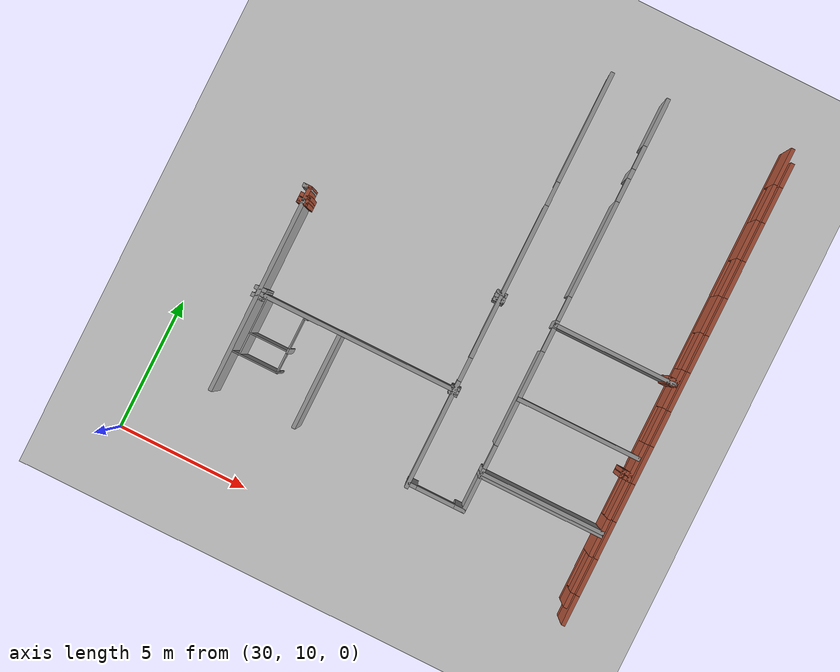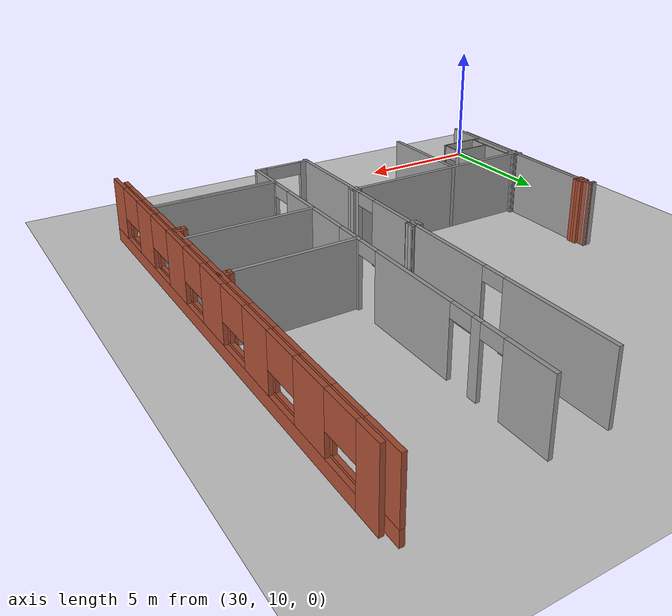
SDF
<sdf version="1.6">
 <world name="default">
  <model name="ground_plane">
   <static>1</static>
   <link name="link">
    <collision name="collision">
     <geometry><plane><normal>0 0 1</normal><size>100 100</size></plane></geometry>
     <surface><friction><ode><mu>100</mu><mu2>50</mu2></ode></friction></surface>
    </collision>
    <visual name="visual">
     <cast_shadows>0</cast_shadows>
     <geometry><plane><normal>0 0 1</normal><size>100 100</size></plane></geometry>
     <material>
      <script><uri>file://media/materials/scripts/gazebo.material</uri><name>Gazebo/Grey</name></script>
     </material>
    </visual>
   </link>
  </model>
  <model name="CVSSP">
   <pose>23.8714 24.094 0 0 -0 0</pose>
   <link name="Wall_11">
    <pose>16.2898 -3.24326 0 0 0 -1.57079</pose>
    <visual name="Wall_11_Visual_0">
     <pose>-5.93516 0 1.25 0 -0 0</pose>
     <geometry><box><size>4.26019 0.15 2.5</size></box></geometry>
     <material>
      <script><uri>file://media/materials/scripts/gazebo.material</uri><name>Gazebo/Grey</name></script>
      <ambient>0.588235 0.588235 0.588235 1</ambient>
     </material>
    </visual>
    <collision name="Wall_11_Collision_0">
     <geometry><box><size>4.26019 0.15 2.5</size></box></geometry>
     <pose>-5.93516 0 1.25 0 -0 0</pose>
    </collision>
    <visual name="Wall_11_Visual_1">
     <pose>0.054186 0 1.25 0 -0 0</pose>
     <geometry><box><size>5.9185 0.15 2.5</size></box></geometry>
     <material>
      <script><uri>file://media/materials/scripts/gazebo.material</uri><name>Gazebo/Grey</name></script>
      <ambient>0.588235 0.588235 0.588235 1</ambient>
     </material>
    </visual>
    <collision name="Wall_11_Collision_1">
     <geometry><box><size>5.9185 0.15 2.5</size></box></geometry>
     <pose>0.054186 0 1.25 0 -0 0</pose>
    </collision>
    <visual name="Wall_11_Visual_2">
     <pose>5.98935 0 1.25 0 -0 0</pose>
     <geometry><box><size>4.15182 0.15 2.5</size></box></geometry>
     <material>
      <script><uri>file://media/materials/scripts/gazebo.material</uri><name>Gazebo/Grey</name></script>
      <ambient>0.588235 0.588235 0.588235 1</ambient>
     </material>
    </visual>
    <collision name="Wall_11_Collision_2">
     <geometry><box><size>4.15182 0.15 2.5</size></box></geometry>
     <pose>5.98935 0 1.25 0 -0 0</pose>
    </collision>
    <visual name="Wall_11_Visual_3">
     <pose>-3.35506 0 2.25 0 -0 0</pose>
     <geometry><box><size>0.9 0.15 0.5</size></box></geometry>
     <material>
      <script><uri>file://media/materials/scripts/gazebo.material</uri><name>Gazebo/Grey</name></script>
      <ambient>0.588235 0.588235 0.588235 1</ambient>
     </material>
    </visual>
    <collision name="Wall_11_Collision_3">
     <geometry><box><size>0.9 0.15 0.5</size></box></geometry>
     <pose>-3.35506 0 2.25 0 -0 0</pose>
    </collision>
    <visual name="Wall_11_Visual_4">
     <pose>3.46344 0 2.25 0 -0 0</pose>
     <geometry><box><size>0.9 0.15 0.5</size></box></geometry>
     <material>
      <script><uri>file://media/materials/scripts/gazebo.material</uri><name>Gazebo/Grey</name></script>
      <ambient>0.588235 0.588235 0.588235 1</ambient>
     </material>
    </visual>
    <collision name="Wall_11_Collision_4">
     <geometry><box><size>0.9 0.15 0.5</size></box></geometry>
     <pose>3.46344 0 2.25 0 -0 0</pose>
    </collision>
   </link>
   <link name="Wall_116">
    <collision name="Wall_116_Collision">
     <geometry><box><size>7.43734 0.15 2.5</size></box></geometry>
     <pose>0 0 1.25 0 -0 0</pose>
    </collision>
    <visual name="Wall_116_Visual">
     <pose>0 0 1.25 0 -0 0</pose>
     <geometry><box><size>7.43734 0.15 2.5</size></box></geometry>
     <material>
      <script><uri>file://media/materials/scripts/gazebo.material</uri><name>Gazebo/Grey</name></script>
      <ambient>1 1 1 1</ambient>
     </material>
    </visual>
    <pose>8.67152 -7.59872 0 0 -0 1.57447</pose>
   </link>
   <link name="Wall_118">
    <collision name="Wall_118_Collision">
     <geometry><box><size>0.6489 0.15 2.5</size></box></geometry>
     <pose>0 0 1.25 0 -0 0</pose>
    </collision>
    <visual name="Wall_118_Visual">
     <pose>0 0 1.25 0 -0 0</pose>
     <geometry><box><size>0.6489 0.15 2.5</size></box></geometry>
     <material>
      <script><uri>file://media/materials/scripts/gazebo.material</uri><name>Gazebo/Bricks</name></script>
      <ambient>1 1 1 1</ambient>
     </material>
    </visual>
    <pose>8.65546 -3.70564 0 0 0 -1.56013</pose>
   </link>
   <link name="Wall_119">
    <collision name="Wall_119_Collision">
     <geometry><box><size>0.297808 0.15 2.5</size></box></geometry>
     <pose>0 0 1.25 0 -0 0</pose>
    </collision>
    <visual name="Wall_119_Visual">
     <pose>0 0 1.25 0 -0 0</pose>
     <geometry><box><size>0.297808 0.15 2.5</size></box></geometry>
     <material>
      <script><uri>file://media/materials/scripts/gazebo.material</uri><name>Gazebo/Bricks</name></script>
      <ambient>1 1 1 1</ambient>
     </material>
    </visual>
    <pose>8.58427 -3.95789 0 0 0 -3.10353</pose>
   </link>
   <link name="Wall_121">
    <collision name="Wall_121_Collision">
     <geometry><box><size>0.41465 0.15 2.5</size></box></geometry>
     <pose>0 0 1.25 0 -0 0</pose>
    </collision>
    <visual name="Wall_121_Visual">
     <pose>0 0 1.25 0 -0 0</pose>
     <geometry><box><size>0.41465 0.15 2.5</size></box></geometry>
     <material>
      <script><uri>file://media/materials/scripts/gazebo.material</uri><name>Gazebo/Bricks</name></script>
      <ambient>1 1 1 1</ambient>
     </material>
    </visual>
    <pose>8.64275 -3.77922 0 0 -0 0</pose>
   </link>
   <link name="Wall_122">
    <collision name="Wall_122_Collision">
     <geometry><box><size>0.399527 0.15 2.5</size></box></geometry>
     <pose>0 0 1.25 0 -0 0</pose>
    </collision>
    <visual name="Wall_122_Visual">
     <pose>0 0 1.25 0 -0 0</pose>
     <geometry><box><size>0.399527 0.15 2.5</size></box></geometry>
     <material>
      <script><uri>file://media/materials/scripts/gazebo.material</uri><name>Gazebo/Bricks</name></script>
      <ambient>1 1 1 1</ambient>
     </material>
    </visual>
    <pose>8.77507 -3.90399 0 0 0 -1.5708</pose>
   </link>
   <link name="Wall_123">
    <collision name="Wall_123_Collision">
     <geometry><box><size>0.415082 0.15 2.5</size></box></geometry>
     <pose>0 0 1.25 0 -0 0</pose>
    </collision>
    <visual name="Wall_123_Visual">
     <pose>0 0 1.25 0 -0 0</pose>
     <geometry><box><size>0.415082 0.15 2.5</size></box></geometry>
     <material>
      <script><uri>file://media/materials/scripts/gazebo.material</uri><name>Gazebo/Bricks</name></script>
      <ambient>1 1 1 1</ambient>
     </material>
    </visual>
    <pose>8.64275 -4.02875 0 0 -0 3.14159</pose>
   </link>
   <link name="Wall_127">
    <collision name="Wall_127_Collision">
     <geometry><box><size>7.75 0.15 2.5</size></box></geometry>
     <pose>0 0 1.25 0 -0 0</pose>
    </collision>
    <visual name="Wall_127_Visual">
     <pose>0 0 1.25 0 -0 0</pose>
     <geometry><box><size>7.75 0.15 2.5</size></box></geometry>
     <material>
      <script><uri>file://media/materials/scripts/gazebo.material</uri><name>Gazebo/Grey</name></script>
      <ambient>0.588235 0.588235 0.588235 1</ambient>
     </material>
    </visual>
    <pose>12.4552 -7.51532 0 0 -0 0</pose>
   </link>
   <link name="Wall_129">
    <collision name="Wall_129_Collision">
     <geometry><box><size>3.75 0.15 2.5</size></box></geometry>
     <pose>0 0 1.25 0 -0 0</pose>
    </collision>
    <visual name="Wall_129_Visual">
     <pose>0 0 1.25 0 -0 0</pose>
     <geometry><box><size>3.75 0.15 2.5</size></box></geometry>
     <material>
      <script><uri>file://media/materials/scripts/gazebo.material</uri><name>Gazebo/Grey</name></script>
      <ambient>1 1 1 1</ambient>
     </material>
    </visual>
    <pose>11.8522 -9.31531 0 0 0 -1.5708</pose>
   </link>
   <link name="Wall_133">
    <collision name="Wall_133_Collision">
     <geometry><box><size>4.75 0.15 2.5</size></box></geometry>
     <pose>0 0 1.25 0 -0 0</pose>
    </collision>
    <visual name="Wall_133_Visual">
     <pose>0 0 1.25 0 -0 0</pose>
     <geometry><box><size>4.75 0.15 2.5</size></box></geometry>
     <material>
      <script><uri>file://media/materials/scripts/gazebo.material</uri><name>Gazebo/Grey</name></script>
      <ambient>1 1 1 1</ambient>
     </material>
    </visual>
    <pose>20.7823 -9.67291 0 0 -0 0</pose>
   </link>
   <link name="Wall_134">
    <pose>23.0834 -2.24791 0 0 -0 1.57065</pose>
    <visual name="Wall_134_Visual_0">
     <pose>-7.19251 0 1.25 0 -0 0</pose>
     <geometry><box><size>0.601822 0.15 2.5</size></box></geometry>
     <material>
      <script><uri>file://media/materials/scripts/gazebo.material</uri><name>Gazebo/Bricks</name></script>
      <ambient>1 1 1 1</ambient>
     </material>
    </visual>
    <collision name="Wall_134_Collision_0">
     <geometry><box><size>0.601822 0.15 2.5</size></box></geometry>
     <pose>-7.19251 0 1.25 0 -0 0</pose>
    </collision>
    <visual name="Wall_134_Visual_1">
     <pose>0.300911 0 0.25 0 -0 0</pose>
     <geometry><box><size>14.385 0.15 0.5</size></box></geometry>
     <material>
      <script><uri>file://media/materials/scripts/gazebo.material</uri><name>Gazebo/Bricks</name></script>
      <ambient>1 1 1 1</ambient>
     </material>
    </visual>
    <collision name="Wall_134_Collision_1">
     <geometry><box><size>14.385 0.15 0.5</size></box></geometry>
     <pose>0.300911 0 0.25 0 -0 0</pose>
    </collision>
    <visual name="Wall_134_Visual_2">
     <pose>-4.69343 0 1.5 0 -0 0</pose>
     <geometry><box><size>1.46267 0.15 2</size></box></geometry>
     <material>
      <script><uri>file://media/materials/scripts/gazebo.material</uri><name>Gazebo/Bricks</name></script>
      <ambient>1 1 1 1</ambient>
     </material>
    </visual>
    <collision name="Wall_134_Collision_2">
     <geometry><box><size>1.46267 0.15 2</size></box></geometry>
     <pose>-4.69343 0 1.5 0 -0 0</pose>
    </collision>
    <visual name="Wall_134_Visual_3">
     <pose>-1.84084 0 1.5 0 -0 0</pose>
     <geometry><box><size>1.4912 0.15 2</size></box></geometry>
     <material>
      <script><uri>file://media/materials/scripts/gazebo.material</uri><name>Gazebo/Bricks</name></script>
      <ambient>1 1 1 1</ambient>
     </material>
    </visual>
    <collision name="Wall_134_Collision_3">
     <geometry><box><size>1.4912 0.15 2</size></box></geometry>
     <pose>-1.84084 0 1.5 0 -0 0</pose>
    </collision>
    <visual name="Wall_134_Visual_4">
     <pose>1.05448 0 1.5 0 -0 0</pose>
     <geometry><box><size>1.43416 0.15 2</size></box></geometry>
     <material>
      <script><uri>file://media/materials/scripts/gazebo.material</uri><name>Gazebo/Bricks</name></script>
      <ambient>1 1 1 1</ambient>
     </material>
    </visual>
    <collision name="Wall_134_Collision_4">
     <geometry><box><size>1.43416 0.15 2</size></box></geometry>
     <pose>1.05448 0 1.5 0 -0 0</pose>
    </collision>
    <visual name="Wall_134_Visual_5">
     <pose>3.9612 0 1.5 0 -0 0</pose>
     <geometry><box><size>1.50259 0.15 2</size></box></geometry>
     <material>
      <script><uri>file://media/materials/scripts/gazebo.material</uri><name>Gazebo/Bricks</name></script>
      <ambient>1 1 1 1</ambient>
     </material>
    </visual>
    <collision name="Wall_134_Collision_5">
     <geometry><box><size>1.50259 0.15 2</size></box></geometry>
     <pose>3.9612 0 1.5 0 -0 0</pose>
    </collision>
    <visual name="Wall_134_Visual_6">
     <pose>6.79134 0 1.5 0 -0 0</pose>
     <geometry><box><size>1.40418 0.15 2</size></box></geometry>
     <material>
      <script><uri>file://media/materials/scripts/gazebo.material</uri><name>Gazebo/Bricks</name></script>
      <ambient>1 1 1 1</ambient>
     </material>
    </visual>
    <collision name="Wall_134_Collision_6">
     <geometry><box><size>1.40418 0.15 2</size></box></geometry>
     <pose>6.79134 0 1.5 0 -0 0</pose>
    </collision>
    <visual name="Wall_134_Visual_7">
     <pose>-6.15818 0 1.9 0 -0 0</pose>
     <geometry><box><size>1.46684 0.15 1.2</size></box></geometry>
     <material>
      <script><uri>file://media/materials/scripts/gazebo.material</uri><name>Gazebo/Bricks</name></script>
      <ambient>1 1 1 1</ambient>
     </material>
    </visual>
    <collision name="Wall_134_Collision_7">
     <geometry><box><size>1.46684 0.15 1.2</size></box></geometry>
     <pose>-6.15818 0 1.9 0 -0 0</pose>
    </collision>
    <visual name="Wall_134_Visual_8">
     <pose>-3.27427 0 1.9 0 -0 0</pose>
     <geometry><box><size>1.37565 0.15 1.2</size></box></geometry>
     <material>
      <script><uri>file://media/materials/scripts/gazebo.material</uri><name>Gazebo/Bricks</name></script>
      <ambient>1 1 1 1</ambient>
     </material>
    </visual>
    <collision name="Wall_134_Collision_8">
     <geometry><box><size>1.37565 0.15 1.2</size></box></geometry>
     <pose>-3.27427 0 1.9 0 -0 0</pose>
    </collision>
    <visual name="Wall_134_Visual_9">
     <pose>-0.378919 0 1.9 0 -0 0</pose>
     <geometry><box><size>1.43264 0.15 1.2</size></box></geometry>
     <material>
      <script><uri>file://media/materials/scripts/gazebo.material</uri><name>Gazebo/Bricks</name></script>
      <ambient>1 1 1 1</ambient>
     </material>
    </visual>
    <collision name="Wall_134_Collision_9">
     <geometry><box><size>1.43264 0.15 1.2</size></box></geometry>
     <pose>-0.378919 0 1.9 0 -0 0</pose>
    </collision>
    <visual name="Wall_134_Visual_10">
     <pose>2.49073 0 1.9 0 -0 0</pose>
     <geometry><box><size>1.43834 0.15 1.2</size></box></geometry>
     <material>
      <script><uri>file://media/materials/scripts/gazebo.material</uri><name>Gazebo/Bricks</name></script>
      <ambient>1 1 1 1</ambient>
     </material>
    </visual>
    <collision name="Wall_134_Collision_10">
     <geometry><box><size>1.43834 0.15 1.2</size></box></geometry>
     <pose>2.49073 0 1.9 0 -0 0</pose>
    </collision>
    <visual name="Wall_134_Visual_11">
     <pose>5.40087 0 1.9 0 -0 0</pose>
     <geometry><box><size>1.37675 0.15 1.2</size></box></geometry>
     <material>
      <script><uri>file://media/materials/scripts/gazebo.material</uri><name>Gazebo/Bricks</name></script>
      <ambient>1 1 1 1</ambient>
     </material>
    </visual>
    <collision name="Wall_134_Collision_11">
     <geometry><box><size>1.37675 0.15 1.2</size></box></geometry>
     <pose>5.40087 0 1.9 0 -0 0</pose>
    </collision>
   </link>
   <link name="Wall_148">
    <pose>23.2939 -4.18787 0 0 0 -1.5707</pose>
    <visual name="Wall_148_Visual_0">
     <pose>-8.49404 0 1.25 0 -0 0</pose>
     <geometry><box><size>0.935478 0.15 2.5</size></box></geometry>
     <material>
      <script><uri>file://media/materials/scripts/gazebo.material</uri><name>Gazebo/Bricks</name></script>
      <ambient>1 1 1 1</ambient>
     </material>
    </visual>
    <collision name="Wall_148_Collision_0">
     <geometry><box><size>0.935478 0.15 2.5</size></box></geometry>
     <pose>-8.49404 0 1.25 0 -0 0</pose>
    </collision>
    <visual name="Wall_148_Visual_1">
     <pose>0.467739 0 0.25 0 -0 0</pose>
     <geometry><box><size>16.9881 0.15 0.5</size></box></geometry>
     <material>
      <script><uri>file://media/materials/scripts/gazebo.material</uri><name>Gazebo/Bricks</name></script>
      <ambient>1 1 1 1</ambient>
     </material>
    </visual>
    <collision name="Wall_148_Collision_1">
     <geometry><box><size>16.9881 0.15 0.5</size></box></geometry>
     <pose>0.467739 0 0.25 0 -0 0</pose>
    </collision>
    <visual name="Wall_148_Visual_2">
     <pose>-5.90972 0 1.5 0 -0 0</pose>
     <geometry><box><size>1.49689 0.15 2</size></box></geometry>
     <material>
      <script><uri>file://media/materials/scripts/gazebo.material</uri><name>Gazebo/Bricks</name></script>
      <ambient>1 1 1 1</ambient>
     </material>
    </visual>
    <collision name="Wall_148_Collision_2">
     <geometry><box><size>1.49689 0.15 2</size></box></geometry>
     <pose>-5.90972 0 1.5 0 -0 0</pose>
    </collision>
    <visual name="Wall_148_Visual_3">
     <pose>-3.00584 0 1.5 0 -0 0</pose>
     <geometry><box><size>1.45698 0.15 2</size></box></geometry>
     <material>
      <script><uri>file://media/materials/scripts/gazebo.material</uri><name>Gazebo/Bricks</name></script>
      <ambient>1 1 1 1</ambient>
     </material>
    </visual>
    <collision name="Wall_148_Collision_3">
     <geometry><box><size>1.45698 0.15 2</size></box></geometry>
     <pose>-3.00584 0 1.5 0 -0 0</pose>
    </collision>
    <visual name="Wall_148_Visual_4">
     <pose>-0.101966 0 1.5 0 -0 0</pose>
     <geometry><box><size>1.50828 0.15 2</size></box></geometry>
     <material>
      <script><uri>file://media/materials/scripts/gazebo.material</uri><name>Gazebo/Bricks</name></script>
      <ambient>1 1 1 1</ambient>
     </material>
    </visual>
    <collision name="Wall_148_Collision_4">
     <geometry><box><size>1.50828 0.15 2</size></box></geometry>
     <pose>-0.101966 0 1.5 0 -0 0</pose>
    </collision>
    <visual name="Wall_148_Visual_5">
     <pose>2.74776 0 1.5 0 -0 0</pose>
     <geometry><box><size>1.46268 0.15 2</size></box></geometry>
     <material>
      <script><uri>file://media/materials/scripts/gazebo.material</uri><name>Gazebo/Bricks</name></script>
      <ambient>1 1 1 1</ambient>
     </material>
    </visual>
    <collision name="Wall_148_Collision_5">
     <geometry><box><size>1.46268 0.15 2</size></box></geometry>
     <pose>2.74776 0 1.5 0 -0 0</pose>
    </collision>
    <visual name="Wall_148_Visual_6">
     <pose>5.65733 0 1.5 0 -0 0</pose>
     <geometry><box><size>1.44558 0.15 2</size></box></geometry>
     <material>
      <script><uri>file://media/materials/scripts/gazebo.material</uri><name>Gazebo/Bricks</name></script>
      <ambient>1 1 1 1</ambient>
     </material>
    </visual>
    <collision name="Wall_148_Collision_6">
     <geometry><box><size>1.44558 0.15 2</size></box></geometry>
     <pose>5.65733 0 1.5 0 -0 0</pose>
    </collision>
    <visual name="Wall_148_Visual_7">
     <pose>8.39012 0 1.5 0 -0 0</pose>
     <geometry><box><size>1.14332 0.15 2</size></box></geometry>
     <material>
      <script><uri>file://media/materials/scripts/gazebo.material</uri><name>Gazebo/Bricks</name></script>
      <ambient>1 1 1 1</ambient>
     </material>
    </visual>
    <collision name="Wall_148_Collision_7">
     <geometry><box><size>1.14332 0.15 2</size></box></geometry>
     <pose>8.39012 0 1.5 0 -0 0</pose>
    </collision>
    <visual name="Wall_148_Visual_8">
     <pose>-7.34223 0 1.9 0 -0 0</pose>
     <geometry><box><size>1.36813 0.15 1.2</size></box></geometry>
     <material>
      <script><uri>file://media/materials/scripts/gazebo.material</uri><name>Gazebo/Bricks</name></script>
      <ambient>1 1 1 1</ambient>
     </material>
    </visual>
    <collision name="Wall_148_Collision_8">
     <geometry><box><size>1.36813 0.15 1.2</size></box></geometry>
     <pose>-7.34223 0 1.9 0 -0 0</pose>
    </collision>
    <visual name="Wall_148_Visual_9">
     <pose>-4.4478 0 1.9 0 -0 0</pose>
     <geometry><box><size>1.42694 0.15 1.2</size></box></geometry>
     <material>
      <script><uri>file://media/materials/scripts/gazebo.material</uri><name>Gazebo/Bricks</name></script>
      <ambient>1 1 1 1</ambient>
     </material>
    </visual>
    <collision name="Wall_148_Collision_9">
     <geometry><box><size>1.42694 0.15 1.2</size></box></geometry>
     <pose>-4.4478 0 1.9 0 -0 0</pose>
    </collision>
    <visual name="Wall_148_Visual_10">
     <pose>-1.56673 0 1.9 0 -0 0</pose>
     <geometry><box><size>1.42124 0.15 1.2</size></box></geometry>
     <material>
      <script><uri>file://media/materials/scripts/gazebo.material</uri><name>Gazebo/Bricks</name></script>
      <ambient>1 1 1 1</ambient>
     </material>
    </visual>
    <collision name="Wall_148_Collision_10">
     <geometry><box><size>1.42124 0.15 1.2</size></box></geometry>
     <pose>-1.56673 0 1.9 0 -0 0</pose>
    </collision>
    <visual name="Wall_148_Visual_11">
     <pose>1.3343 0 1.9 0 -0 0</pose>
     <geometry><box><size>1.36425 0.15 1.2</size></box></geometry>
     <material>
      <script><uri>file://media/materials/scripts/gazebo.material</uri><name>Gazebo/Bricks</name></script>
      <ambient>1 1 1 1</ambient>
     </material>
    </visual>
    <collision name="Wall_148_Collision_11">
     <geometry><box><size>1.36425 0.15 1.2</size></box></geometry>
     <pose>1.3343 0 1.9 0 -0 0</pose>
    </collision>
    <visual name="Wall_148_Visual_12">
     <pose>4.20682 0 1.9 0 -0 0</pose>
     <geometry><box><size>1.45543 0.15 1.2</size></box></geometry>
     <material>
      <script><uri>file://media/materials/scripts/gazebo.material</uri><name>Gazebo/Bricks</name></script>
      <ambient>1 1 1 1</ambient>
     </material>
    </visual>
    <collision name="Wall_148_Collision_12">
     <geometry><box><size>1.45543 0.15 1.2</size></box></geometry>
     <pose>4.20682 0 1.9 0 -0 0</pose>
    </collision>
    <visual name="Wall_148_Visual_13">
     <pose>7.09929 0 1.9 0 -0 0</pose>
     <geometry><box><size>1.43834 0.15 1.2</size></box></geometry>
     <material>
      <script><uri>file://media/materials/scripts/gazebo.material</uri><name>Gazebo/Bricks</name></script>
      <ambient>1 1 1 1</ambient>
     </material>
    </visual>
    <collision name="Wall_148_Collision_13">
     <geometry><box><size>1.43834 0.15 1.2</size></box></geometry>
     <pose>7.09929 0 1.9 0 -0 0</pose>
    </collision>
   </link>
   <link name="Wall_15">
    <pose>17.354 -11.1314 0 0 0 -0.000796</pose>
    <visual name="Wall_15_Visual_0">
     <pose>-0.94801 0 1.25 0 -0 0</pose>
     <geometry><box><size>0.40353 0.15 2.5</size></box></geometry>
     <material>
      <script><uri>file://media/materials/scripts/gazebo.material</uri><name>Gazebo/Grey</name></script>
      <ambient>0.588235 0.588235 0.588235 1</ambient>
     </material>
    </visual>
    <collision name="Wall_15_Collision_0">
     <geometry><box><size>0.40353 0.15 2.5</size></box></geometry>
     <pose>-0.94801 0 1.25 0 -0 0</pose>
    </collision>
    <visual name="Wall_15_Visual_1">
     <pose>0.933339 0 1.25 0 -0 0</pose>
     <geometry><box><size>0.432873 0.15 2.5</size></box></geometry>
     <material>
      <script><uri>file://media/materials/scripts/gazebo.material</uri><name>Gazebo/Grey</name></script>
      <ambient>0.588235 0.588235 0.588235 1</ambient>
     </material>
    </visual>
    <collision name="Wall_15_Collision_1">
     <geometry><box><size>0.432873 0.15 2.5</size></box></geometry>
     <pose>0.933339 0 1.25 0 -0 0</pose>
    </collision>
    <visual name="Wall_15_Visual_2">
     <pose>-0.014671 0 2.25 0 -0 0</pose>
     <geometry><box><size>1.46315 0.15 0.5</size></box></geometry>
     <material>
      <script><uri>file://media/materials/scripts/gazebo.material</uri><name>Gazebo/Grey</name></script>
      <ambient>0.588235 0.588235 0.588235 1</ambient>
     </material>
    </visual>
    <collision name="Wall_15_Collision_2">
     <geometry><box><size>1.46315 0.15 0.5</size></box></geometry>
     <pose>-0.014671 0 2.25 0 -0 0</pose>
    </collision>
   </link>
   <link name="Wall_150">
    <collision name="Wall_150_Collision">
     <geometry><box><size>4.80423 0.15 2.5</size></box></geometry>
     <pose>0 0 1.25 0 -0 0</pose>
    </collision>
    <visual name="Wall_150_Visual">
     <pose>0 0 1.25 0 -0 0</pose>
     <geometry><box><size>4.80423 0.15 2.5</size></box></geometry>
     <material>
      <script><uri>file://media/materials/scripts/gazebo.material</uri><name>Gazebo/Grey</name></script>
      <ambient>0.588235 0.588235 0.588235 1</ambient>
     </material>
    </visual>
    <pose>20.7564 -9.78108 0 0 -0 0.001313</pose>
   </link>
   <link name="Wall_151">
    <pose>23.0856 -11.1326 0 0 0 -1.56927</pose>
    <visual name="Wall_151_Visual_0">
     <pose>-0.991338 0 1.25 0 -0 0</pose>
     <geometry><box><size>0.876406 0.15 2.5</size></box></geometry>
     <material>
      <script><uri>file://media/materials/scripts/gazebo.material</uri><name>Gazebo/Bricks</name></script>
      <ambient>1 1 1 1</ambient>
     </material>
    </visual>
    <collision name="Wall_151_Collision_0">
     <geometry><box><size>0.876406 0.15 2.5</size></box></geometry>
     <pose>-0.991338 0 1.25 0 -0 0</pose>
    </collision>
    <visual name="Wall_151_Visual_1">
     <pose>0.438203 0 0.25 0 -0 0</pose>
     <geometry><box><size>1.98267 0.15 0.5</size></box></geometry>
     <material>
      <script><uri>file://media/materials/scripts/gazebo.material</uri><name>Gazebo/Bricks</name></script>
      <ambient>1 1 1 1</ambient>
     </material>
    </visual>
    <collision name="Wall_151_Collision_1">
     <geometry><box><size>1.98267 0.15 0.5</size></box></geometry>
     <pose>0.438203 0 0.25 0 -0 0</pose>
    </collision>
    <visual name="Wall_151_Visual_2">
     <pose>1.14601 0 1.5 0 -0 0</pose>
     <geometry><box><size>0.567066 0.15 2</size></box></geometry>
     <material>
      <script><uri>file://media/materials/scripts/gazebo.material</uri><name>Gazebo/Bricks</name></script>
      <ambient>1 1 1 1</ambient>
     </material>
    </visual>
    <collision name="Wall_151_Collision_2">
     <geometry><box><size>0.567066 0.15 2</size></box></geometry>
     <pose>1.14601 0 1.5 0 -0 0</pose>
    </collision>
    <visual name="Wall_151_Visual_3">
     <pose>0.15467 0 1.9 0 -0 0</pose>
     <geometry><box><size>1.41561 0.15 1.2</size></box></geometry>
     <material>
      <script><uri>file://media/materials/scripts/gazebo.material</uri><name>Gazebo/Bricks</name></script>
      <ambient>1 1 1 1</ambient>
     </material>
    </visual>
    <collision name="Wall_151_Collision_3">
     <geometry><box><size>1.41561 0.15 1.2</size></box></geometry>
     <pose>0.15467 0 1.9 0 -0 0</pose>
    </collision>
   </link>
   <link name="Wall_166">
    <collision name="Wall_166_Collision">
     <geometry><box><size>4.75 0.15 2.5</size></box></geometry>
     <pose>0 0 1.25 0 -0 0</pose>
    </collision>
    <visual name="Wall_166_Visual">
     <pose>0 0 1.25 0 -0 0</pose>
     <geometry><box><size>4.75 0.15 2.5</size></box></geometry>
     <material>
      <script><uri>file://media/materials/scripts/gazebo.material</uri><name>Gazebo/Grey</name></script>
      <ambient>0.588235 0.588235 0.588235 1</ambient>
     </material>
    </visual>
    <pose>20.7514 -6.79871 0 0 -0 0</pose>
   </link>
   <link name="Wall_168">
    <collision name="Wall_168_Collision">
     <geometry><box><size>4.75 0.15 2.5</size></box></geometry>
     <pose>0 0 1.25 0 -0 0</pose>
    </collision>
    <visual name="Wall_168_Visual">
     <pose>0 0 1.25 0 -0 0</pose>
     <geometry><box><size>4.75 0.15 2.5</size></box></geometry>
     <material>
      <script><uri>file://media/materials/scripts/gazebo.material</uri><name>Gazebo/Grey</name></script>
      <ambient>0.588235 0.588235 0.588235 1</ambient>
     </material>
    </visual>
    <pose>20.7514 -3.92247 0 0 -0 0</pose>
   </link>
   <link name="Wall_67">
    <pose>18.433 -3.16776 0 0 -0 1.57026</pose>
    <visual name="Wall_67_Visual_0">
     <pose>-7.18077 0 1.25 0 -0 0</pose>
     <geometry><box><size>1.71739 0.15 2.5</size></box></geometry>
     <material>
      <script><uri>file://media/materials/scripts/gazebo.material</uri><name>Gazebo/Grey</name></script>
      <ambient>0.588235 0.588235 0.588235 1</ambient>
     </material>
    </visual>
    <collision name="Wall_67_Collision_0">
     <geometry><box><size>1.71739 0.15 2.5</size></box></geometry>
     <pose>-7.18077 0 1.25 0 -0 0</pose>
    </collision>
    <visual name="Wall_67_Visual_1">
     <pose>-3.59924 0 1.25 0 -0 0</pose>
     <geometry><box><size>3.64566 0.15 2.5</size></box></geometry>
     <material>
      <script><uri>file://media/materials/scripts/gazebo.material</uri><name>Gazebo/Grey</name></script>
      <ambient>0.588235 0.588235 0.588235 1</ambient>
     </material>
    </visual>
    <collision name="Wall_67_Collision_1">
     <geometry><box><size>3.64566 0.15 2.5</size></box></geometry>
     <pose>-3.59924 0 1.25 0 -0 0</pose>
    </collision>
    <visual name="Wall_67_Visual_2">
     <pose>-0.733075 0 1.25 0 -0 0</pose>
     <geometry><box><size>0.286679 0.15 2.5</size></box></geometry>
     <material>
      <script><uri>file://media/materials/scripts/gazebo.material</uri><name>Gazebo/Grey</name></script>
      <ambient>0.588235 0.588235 0.588235 1</ambient>
     </material>
    </visual>
    <collision name="Wall_67_Collision_2">
     <geometry><box><size>0.286679 0.15 2.5</size></box></geometry>
     <pose>-0.733075 0 1.25 0 -0 0</pose>
    </collision>
    <visual name="Wall_67_Visual_3">
     <pose>2.19347 0 1.25 0 -0 0</pose>
     <geometry><box><size>3.68595 0.15 2.5</size></box></geometry>
     <material>
      <script><uri>file://media/materials/scripts/gazebo.material</uri><name>Gazebo/Grey</name></script>
      <ambient>0.588235 0.588235 0.588235 1</ambient>
     </material>
    </visual>
    <collision name="Wall_67_Collision_3">
     <geometry><box><size>3.68595 0.15 2.5</size></box></geometry>
     <pose>2.19347 0 1.25 0 -0 0</pose>
    </collision>
    <visual name="Wall_67_Visual_4">
     <pose>5.11998 0 1.25 0 -0 0</pose>
     <geometry><box><size>0.36709 0.15 2.5</size></box></geometry>
     <material>
      <script><uri>file://media/materials/scripts/gazebo.material</uri><name>Gazebo/Grey</name></script>
      <ambient>0.588235 0.588235 0.588235 1</ambient>
     </material>
    </visual>
    <collision name="Wall_67_Collision_4">
     <geometry><box><size>0.36709 0.15 2.5</size></box></geometry>
     <pose>5.11998 0 1.25 0 -0 0</pose>
    </collision>
    <visual name="Wall_67_Visual_5">
     <pose>7.1215 0 1.25 0 -0 0</pose>
     <geometry><box><size>1.83593 0.15 2.5</size></box></geometry>
     <material>
      <script><uri>file://media/materials/scripts/gazebo.material</uri><name>Gazebo/Grey</name></script>
      <ambient>0.588235 0.588235 0.588235 1</ambient>
     </material>
    </visual>
    <collision name="Wall_67_Collision_5">
     <geometry><box><size>1.83593 0.15 2.5</size></box></geometry>
     <pose>7.1215 0 1.25 0 -0 0</pose>
    </collision>
    <visual name="Wall_67_Visual_6">
     <pose>-5.87207 0 2.25 0 -0 0</pose>
     <geometry><box><size>0.9 0.15 0.5</size></box></geometry>
     <material>
      <script><uri>file://media/materials/scripts/gazebo.material</uri><name>Gazebo/Grey</name></script>
      <ambient>0.588235 0.588235 0.588235 1</ambient>
     </material>
    </visual>
    <collision name="Wall_67_Collision_6">
     <geometry><box><size>0.9 0.15 0.5</size></box></geometry>
     <pose>-5.87207 0 2.25 0 -0 0</pose>
    </collision>
    <visual name="Wall_67_Visual_7">
     <pose>-1.32641 0 2.25 0 -0 0</pose>
     <geometry><box><size>0.9 0.15 0.5</size></box></geometry>
     <material>
      <script><uri>file://media/materials/scripts/gazebo.material</uri><name>Gazebo/Grey</name></script>
      <ambient>0.588235 0.588235 0.588235 1</ambient>
     </material>
    </visual>
    <collision name="Wall_67_Collision_7">
     <geometry><box><size>0.9 0.15 0.5</size></box></geometry>
     <pose>-1.32641 0 2.25 0 -0 0</pose>
    </collision>
    <visual name="Wall_67_Visual_8">
     <pose>-0.119622 0 2.25 0 -0 0</pose>
     <geometry><box><size>0.940227 0.15 0.5</size></box></geometry>
     <material>
      <script><uri>file://media/materials/scripts/gazebo.material</uri><name>Gazebo/Grey</name></script>
      <ambient>0.588235 0.588235 0.588235 1</ambient>
     </material>
    </visual>
    <collision name="Wall_67_Collision_8">
     <geometry><box><size>0.940227 0.15 0.5</size></box></geometry>
     <pose>-0.119622 0 2.25 0 -0 0</pose>
    </collision>
    <visual name="Wall_67_Visual_9">
     <pose>4.48644 0 2.25 0 -0 0</pose>
     <geometry><box><size>0.9 0.15 0.5</size></box></geometry>
     <material>
      <script><uri>file://media/materials/scripts/gazebo.material</uri><name>Gazebo/Grey</name></script>
      <ambient>0.588235 0.588235 0.588235 1</ambient>
     </material>
    </visual>
    <collision name="Wall_67_Collision_9">
     <geometry><box><size>0.9 0.15 0.5</size></box></geometry>
     <pose>4.48644 0 2.25 0 -0 0</pose>
    </collision>
    <visual name="Wall_67_Visual_10">
     <pose>5.75353 0 2.25 0 -0 0</pose>
     <geometry><box><size>0.9 0.15 0.5</size></box></geometry>
     <material>
      <script><uri>file://media/materials/scripts/gazebo.material</uri><name>Gazebo/Grey</name></script>
      <ambient>0.588235 0.588235 0.588235 1</ambient>
     </material>
    </visual>
    <collision name="Wall_67_Collision_10">
     <geometry><box><size>0.9 0.15 0.5</size></box></geometry>
     <pose>5.75353 0 2.25 0 -0 0</pose>
    </collision>
   </link>
   <link name="Wall_739">
    <collision name="Wall_739_Collision">
     <geometry><box><size>0.412351 0.15 2.5</size></box></geometry>
     <pose>0 0 1.25 0 -0 0</pose>
    </collision>
    <visual name="Wall_739_Visual">
     <pose>0 0 1.25 0 -0 0</pose>
     <geometry><box><size>0.412351 0.15 2.5</size></box></geometry>
     <material>
      <script><uri>file://media/materials/scripts/gazebo.material</uri><name>Gazebo/Grey</name></script>
      <ambient>1 1 1 1</ambient>
     </material>
    </visual>
    <pose>16.2625 -3.77466 0 0 0 -0.066568</pose>
   </link>
   <link name="Wall_740">
    <collision name="Wall_740_Collision">
     <geometry><box><size>0.395485 0.15 2.5</size></box></geometry>
     <pose>0 0 1.25 0 -0 0</pose>
    </collision>
    <visual name="Wall_740_Visual">
     <pose>0 0 1.25 0 -0 0</pose>
     <geometry><box><size>0.395485 0.15 2.5</size></box></geometry>
     <material>
      <script><uri>file://media/materials/scripts/gazebo.material</uri><name>Gazebo/Grey</name></script>
      <ambient>1 1 1 1</ambient>
     </material>
    </visual>
    <pose>16.3981 -3.90583 0 0 0 -1.5351</pose>
   </link>
   <link name="Wall_741">
    <collision name="Wall_741_Collision">
     <geometry><box><size>0.42166 0.15 2.5</size></box></geometry>
     <pose>0 0 1.25 0 -0 0</pose>
    </collision>
    <visual name="Wall_741_Visual">
     <pose>0 0 1.25 0 -0 0</pose>
     <geometry><box><size>0.42166 0.15 2.5</size></box></geometry>
     <material>
      <script><uri>file://media/materials/scripts/gazebo.material</uri><name>Gazebo/Grey</name></script>
      <ambient>1 1 1 1</ambient>
     </material>
    </visual>
    <pose>16.2669 -4.03264 0 0 0 -3.10935</pose>
   </link>
   <link name="Wall_742">
    <collision name="Wall_742_Collision">
     <geometry><box><size>0.421096 0.15 2.5</size></box></geometry>
     <pose>0 0 1.25 0 -0 0</pose>
    </collision>
    <visual name="Wall_742_Visual">
     <pose>0 0 1.25 0 -0 0</pose>
     <geometry><box><size>0.421096 0.15 2.5</size></box></geometry>
     <material>
      <script><uri>file://media/materials/scripts/gazebo.material</uri><name>Gazebo/Grey</name></script>
      <ambient>1 1 1 1</ambient>
     </material>
    </visual>
    <pose>16.1314 -3.90146 0 0 -0 1.5708</pose>
   </link>
   <link name="Wall_745">
    <collision name="Wall_745_Collision">
     <geometry><box><size>0.4145 0.15 2.5</size></box></geometry>
     <pose>0 0 1.25 0 -0 0</pose>
    </collision>
    <visual name="Wall_745_Visual">
     <pose>0 0 1.25 0 -0 0</pose>
     <geometry><box><size>0.4145 0.15 2.5</size></box></geometry>
     <material>
      <script><uri>file://media/materials/scripts/gazebo.material</uri><name>Gazebo/Bricks</name></script>
      <ambient>1 1 1 1</ambient>
     </material>
    </visual>
    <pose>22.9482 -3.80796 0 0 -0 3.14159</pose>
   </link>
   <link name="Wall_746">
    <collision name="Wall_746_Collision">
     <geometry><box><size>0.31675 0.15 2.5</size></box></geometry>
     <pose>0 0 1.25 0 -0 0</pose>
    </collision>
    <visual name="Wall_746_Visual">
     <pose>0 0 1.25 0 -0 0</pose>
     <geometry><box><size>0.31675 0.15 2.5</size></box></geometry>
     <material>
      <script><uri>file://media/materials/scripts/gazebo.material</uri><name>Gazebo/Bricks</name></script>
      <ambient>1 1 1 1</ambient>
     </material>
    </visual>
    <pose>22.816 -3.89133 0 0 0 -1.5708</pose>
   </link>
   <link name="Wall_747">
    <collision name="Wall_747_Collision">
     <geometry><box><size>0.420495 0.15 2.5</size></box></geometry>
     <pose>0 0 1.25 0 -0 0</pose>
    </collision>
    <visual name="Wall_747_Visual">
     <pose>0 0 1.25 0 -0 0</pose>
     <geometry><box><size>0.420495 0.15 2.5</size></box></geometry>
     <material>
      <script><uri>file://media/materials/scripts/gazebo.material</uri><name>Gazebo/Bricks</name></script>
      <ambient>1 1 1 1</ambient>
     </material>
    </visual>
    <pose>22.9511 -3.97471 0 0 -0 0</pose>
   </link>
   <link name="Wall_749">
    <collision name="Wall_749_Collision">
     <geometry><box><size>0.354987 0.15 2.5</size></box></geometry>
     <pose>0 0 1.25 0 -0 0</pose>
    </collision>
    <visual name="Wall_749_Visual">
     <pose>0 0 1.25 0 -0 0</pose>
     <geometry><box><size>0.354987 0.15 2.5</size></box></geometry>
     <material>
      <script><uri>file://media/materials/scripts/gazebo.material</uri><name>Gazebo/Grey</name></script>
      <ambient>1 1 1 1</ambient>
     </material>
    </visual>
    <pose>16.2901 -7.41966 0 0 -0 0</pose>
   </link>
   <link name="Wall_750">
    <collision name="Wall_750_Collision">
     <geometry><box><size>0.368212 0.15 2.5</size></box></geometry>
     <pose>0 0 1.25 0 -0 0</pose>
    </collision>
    <visual name="Wall_750_Visual">
     <pose>0 0 1.25 0 -0 0</pose>
     <geometry><box><size>0.368212 0.15 2.5</size></box></geometry>
     <material>
      <script><uri>file://media/materials/scripts/gazebo.material</uri><name>Gazebo/Grey</name></script>
      <ambient>1 1 1 1</ambient>
     </material>
    </visual>
    <pose>16.3926 -7.52876 0 0 0 -1.5708</pose>
   </link>
   <link name="Wall_751">
    <collision name="Wall_751_Collision">
     <geometry><box><size>0.361703 0.15 2.5</size></box></geometry>
     <pose>0 0 1.25 0 -0 0</pose>
    </collision>
    <visual name="Wall_751_Visual">
     <pose>0 0 1.25 0 -0 0</pose>
     <geometry><box><size>0.361703 0.15 2.5</size></box></geometry>
     <material>
      <script><uri>file://media/materials/scripts/gazebo.material</uri><name>Gazebo/Grey</name></script>
      <ambient>1 1 1 1</ambient>
     </material>
    </visual>
    <pose>16.2868 -7.63787 0 0 -0 3.14159</pose>
   </link>
   <link name="Wall_752">
    <collision name="Wall_752_Collision">
     <geometry><box><size>0.368313 0.15 2.5</size></box></geometry>
     <pose>0 0 1.25 0 -0 0</pose>
    </collision>
    <visual name="Wall_752_Visual">
     <pose>0 0 1.25 0 -0 0</pose>
     <geometry><box><size>0.368313 0.15 2.5</size></box></geometry>
     <material>
      <script><uri>file://media/materials/scripts/gazebo.material</uri><name>Gazebo/Grey</name></script>
      <ambient>1 1 1 1</ambient>
     </material>
    </visual>
    <pose>16.1843 -7.52876 0 0 -0 1.5405</pose>
   </link>
   <link name="Wall_755">
    <collision name="Wall_755_Collision">
     <geometry><box><size>0.407888 0.15 2.5</size></box></geometry>
     <pose>0 0 1.25 0 -0 0</pose>
    </collision>
    <visual name="Wall_755_Visual">
     <pose>0 0 1.25 0 -0 0</pose>
     <geometry><box><size>0.407888 0.15 2.5</size></box></geometry>
     <material>
      <script><uri>file://media/materials/scripts/gazebo.material</uri><name>Gazebo/Bricks</name></script>
      <ambient>1 1 1 1</ambient>
     </material>
    </visual>
    <pose>22.9423 -7.41966 0 0 -0 3.14159</pose>
   </link>
   <link name="Wall_756">
    <collision name="Wall_756_Collision">
     <geometry><box><size>0.322052 0.15 2.5</size></box></geometry>
     <pose>0 0 1.25 0 -0 0</pose>
    </collision>
    <visual name="Wall_756_Visual">
     <pose>0 0 1.25 0 -0 0</pose>
     <geometry><box><size>0.322052 0.15 2.5</size></box></geometry>
     <material>
      <script><uri>file://media/materials/scripts/gazebo.material</uri><name>Gazebo/Bricks</name></script>
      <ambient>1 1 1 1</ambient>
     </material>
    </visual>
    <pose>22.8134 -7.50562 0 0 0 -1.5708</pose>
   </link>
   <link name="Wall_757">
    <collision name="Wall_757_Collision">
     <geometry><box><size>0.4145 0.15 2.5</size></box></geometry>
     <pose>0 0 1.25 0 -0 0</pose>
    </collision>
    <visual name="Wall_757_Visual">
     <pose>0 0 1.25 0 -0 0</pose>
     <geometry><box><size>0.4145 0.15 2.5</size></box></geometry>
     <material>
      <script><uri>file://media/materials/scripts/gazebo.material</uri><name>Gazebo/Bricks</name></script>
      <ambient>1 1 1 1</ambient>
     </material>
    </visual>
    <pose>22.9456 -7.59158 0 0 -0 0</pose>
   </link>
   <link name="Wall_862">
    <collision name="Wall_862_Collision">
     <geometry><box><size>0.457357 0.15 2.5</size></box></geometry>
     <pose>0 0 1.25 0 -0 0</pose>
    </collision>
    <visual name="Wall_862_Visual">
     <pose>0 0 1.25 0 -0 0</pose>
     <geometry><box><size>0.457357 0.15 2.5</size></box></geometry>
     <material>
      <script><uri>file://media/materials/scripts/gazebo.material</uri><name>Gazebo/Grey</name></script>
      <ambient>1 1 1 1</ambient>
     </material>
    </visual>
    <pose>8.68766 -7.36008 0 0 0 -3.09906</pose>
   </link>
   <link name="Wall_864">
    <collision name="Wall_864_Collision">
     <geometry><box><size>0.437748 0.15 2.5</size></box></geometry>
     <pose>0 0 1.25 0 -0 0</pose>
    </collision>
    <visual name="Wall_864_Visual">
     <pose>0 0 1.25 0 -0 0</pose>
     <geometry><box><size>0.437748 0.15 2.5</size></box></geometry>
     <material>
      <script><uri>file://media/materials/scripts/gazebo.material</uri><name>Gazebo/Grey</name></script>
      <ambient>1 1 1 1</ambient>
     </material>
    </visual>
    <pose>8.6844 -7.64775 0 0 -0 0</pose>
   </link>
   <link name="Wall_865">
    <collision name="Wall_865_Collision">
     <geometry><box><size>0.444502 0.15 2.5</size></box></geometry>
     <pose>0 0 1.25 0 -0 0</pose>
    </collision>
    <visual name="Wall_865_Visual">
     <pose>0 0 1.25 0 -0 0</pose>
     <geometry><box><size>0.444502 0.15 2.5</size></box></geometry>
     <material>
      <script><uri>file://media/materials/scripts/gazebo.material</uri><name>Gazebo/Grey</name></script>
      <ambient>1 1 1 1</ambient>
     </material>
    </visual>
    <pose>8.83477 -7.50065 0 0 -0 1.52638</pose>
   </link>
   <link name="Wall_868">
    <collision name="Wall_868_Collision">
     <geometry><box><size>1.88039 0.05 2.5</size></box></geometry>
     <pose>0 0 1.25 0 -0 0</pose>
    </collision>
    <visual name="Wall_868_Visual">
     <pose>0 0 1.25 0 -0 0</pose>
     <geometry><box><size>1.88039 0.05 2.5</size></box></geometry>
     <material>
      <script><uri>file://media/materials/scripts/gazebo.material</uri><name>Gazebo/Grey</name></script>
      <ambient>1 1 1 1</ambient>
     </material>
    </visual>
    <pose>9.57313 -9.72726 0 0 -0 0</pose>
   </link>
   <link name="Wall_869">
    <pose>10.4916 -8.67726 0 0 -0 1.5675</pose>
    <visual name="Wall_869_Visual_0">
     <pose>-1.02983 0 1.25 0 -0 0</pose>
     <geometry><box><size>0.090343 0.05 2.5</size></box></geometry>
     <material>
      <script><uri>file://media/materials/scripts/gazebo.material</uri><name>Gazebo/Grey</name></script>
      <ambient>1 1 1 1</ambient>
     </material>
    </visual>
    <collision name="Wall_869_Collision_0">
     <geometry><box><size>0.090343 0.05 2.5</size></box></geometry>
     <pose>-1.02983 0 1.25 0 -0 0</pose>
    </collision>
    <visual name="Wall_869_Visual_1">
     <pose>-0.197948 0 1.25 0 -0 0</pose>
     <geometry><box><size>0.190812 0.05 2.5</size></box></geometry>
     <material>
      <script><uri>file://media/materials/scripts/gazebo.material</uri><name>Gazebo/Grey</name></script>
      <ambient>1 1 1 1</ambient>
     </material>
    </visual>
    <collision name="Wall_869_Collision_1">
     <geometry><box><size>0.190812 0.05 2.5</size></box></geometry>
     <pose>-0.197948 0 1.25 0 -0 0</pose>
    </collision>
    <visual name="Wall_869_Visual_2">
     <pose>1.04926 0 1.25 0 -0 0</pose>
     <geometry><box><size>0.051484 0.05 2.5</size></box></geometry>
     <material>
      <script><uri>file://media/materials/scripts/gazebo.material</uri><name>Gazebo/Grey</name></script>
      <ambient>1 1 1 1</ambient>
     </material>
    </visual>
    <collision name="Wall_869_Collision_2">
     <geometry><box><size>0.051484 0.05 2.5</size></box></geometry>
     <pose>1.04926 0 1.25 0 -0 0</pose>
    </collision>
    <visual name="Wall_869_Visual_3">
     <pose>-0.639005 0 2.25 0 -0 0</pose>
     <geometry><box><size>0.691303 0.05 0.5</size></box></geometry>
     <material>
      <script><uri>file://media/materials/scripts/gazebo.material</uri><name>Gazebo/Grey</name></script>
      <ambient>1 1 1 1</ambient>
     </material>
    </visual>
    <collision name="Wall_869_Collision_3">
     <geometry><box><size>0.691303 0.05 0.5</size></box></geometry>
     <pose>-0.639005 0 2.25 0 -0 0</pose>
    </collision>
    <visual name="Wall_869_Visual_4">
     <pose>0.460487 0 2.25 0 -0 0</pose>
     <geometry><box><size>1.12606 0.05 0.5</size></box></geometry>
     <material>
      <script><uri>file://media/materials/scripts/gazebo.material</uri><name>Gazebo/Grey</name></script>
      <ambient>1 1 1 1</ambient>
     </material>
    </visual>
    <collision name="Wall_869_Collision_4">
     <geometry><box><size>1.12606 0.05 0.5</size></box></geometry>
     <pose>0.460487 0 2.25 0 -0 0</pose>
    </collision>
   </link>
   <link name="Wall_871">
    <collision name="Wall_871_Collision">
     <geometry><box><size>1.5 0.05 2.5</size></box></geometry>
     <pose>0 0 1.25 0 -0 0</pose>
    </collision>
    <visual name="Wall_871_Visual">
     <pose>0 0 1.25 0 -0 0</pose>
     <geometry><box><size>1.5 0.05 2.5</size></box></geometry>
     <material>
      <script><uri>file://media/materials/scripts/gazebo.material</uri><name>Gazebo/Grey</name></script>
      <ambient>1 1 1 1</ambient>
     </material>
    </visual>
    <pose>9.75613 -8.89026 0 0 -0 0</pose>
   </link>
   <link name="Wall_873">
    <collision name="Wall_873_Collision">
     <geometry><box><size>0.899718 0.05 2.5</size></box></geometry>
     <pose>0 0 1.25 0 -0 0</pose>
    </collision>
    <visual name="Wall_873_Visual">
     <pose>0 0 1.25 0 -0 0</pose>
     <geometry><box><size>0.899718 0.05 2.5</size></box></geometry>
     <material>
      <script><uri>file://media/materials/scripts/gazebo.material</uri><name>Gazebo/Grey</name></script>
      <ambient>1 1 1 1</ambient>
     </material>
    </visual>
    <pose>9.03113 -9.31526 0 0 0 -1.5708</pose>
   </link>
   <link name="Wall_875">
    <collision name="Wall_875_Collision">
     <geometry><box><size>1.40028 0.05 2.5</size></box></geometry>
     <pose>0 0 1.25 0 -0 0</pose>
    </collision>
    <visual name="Wall_875_Visual">
     <pose>0 0 1.25 0 -0 0</pose>
     <geometry><box><size>1.40028 0.05 2.5</size></box></geometry>
     <material>
      <script><uri>file://media/materials/scripts/gazebo.material</uri><name>Gazebo/Grey</name></script>
      <ambient>1 1 1 1</ambient>
     </material>
    </visual>
    <pose>9.03113 -8.21526 0 0 -0 1.5708</pose>
   </link>
   <link name="Wall_91">
    <collision name="Wall_91_Collision">
     <geometry><box><size>0.350158 0.15 2.5</size></box></geometry>
     <pose>0 0 1.25 0 -0 0</pose>
    </collision>
    <visual name="Wall_91_Visual">
     <pose>0 0 1.25 0 -0 0</pose>
     <geometry><box><size>0.350158 0.15 2.5</size></box></geometry>
     <material>
      <script><uri>file://media/materials/scripts/gazebo.material</uri><name>Gazebo/Grey</name></script>
      <ambient>1 1 1 1</ambient>
     </material>
    </visual>
    <pose>8.55273 -3.45749 0 0 -0 0.012863</pose>
   </link>
   <link name="Wall_92">
    <collision name="Wall_92_Collision">
     <geometry><box><size>0.350158 0.15 2.5</size></box></geometry>
     <pose>0 0 1.25 0 -0 0</pose>
    </collision>
    <visual name="Wall_92_Visual">
     <pose>0 0 1.25 0 -0 0</pose>
     <geometry><box><size>0.350158 0.15 2.5</size></box></geometry>
     <material>
      <script><uri>file://media/materials/scripts/gazebo.material</uri><name>Gazebo/Bricks</name></script>
      <ambient>1 1 1 1</ambient>
     </material>
    </visual>
    <pose>8.55273 -3.45749 0 0 0 -3.12873</pose>
   </link>
   <static>1</static>
  </model>
 </world>
</sdf>
